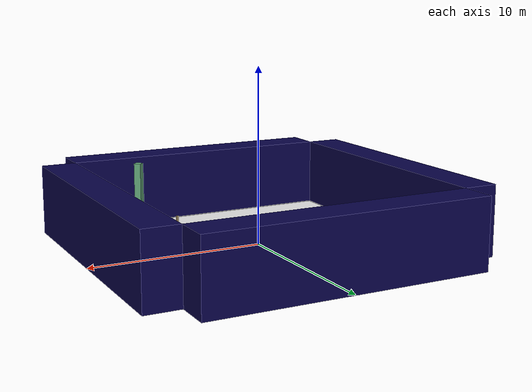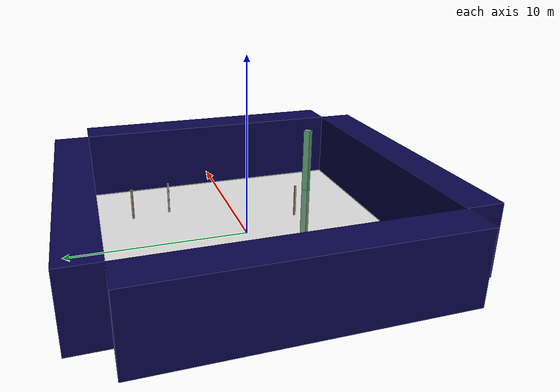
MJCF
<mujoco model="unnamed_model">
  <default>
    <default class="/" />
    <default class="border/" />
    <default class="border_1/" />
    <default class="border_2/" />
    <default class="border_3/" />
    <default class="light/" />
    <default class="agent/" />
    <default class="stone0/" />
    <default class="stone1/" />
    <default class="apple/" />
    <default class="apple_1/" />
  </default>
  <worldbody>
    <body name="border/">
      <body name="border/border" pos="0 9 2">
        <geom name="border/border_geom" class="border/" type="box" size="8.0 1.0 2.0" rgba="0.035 0.016 0.29 1.0" />
      </body>
    </body>
    <body name="border_1/">
      <body name="border_1/border" pos="0 -9 2">
        <geom name="border_1/border_geom" class="border_1/" type="box" size="8.0 1.0 2.0" rgba="0.035 0.016 0.29 1.0" />
      </body>
    </body>
    <body name="border_2/">
      <body name="border_2/border" pos="9 0 2">
        <geom name="border_2/border_geom" class="border_2/" type="box" size="1.0 8.0 2.0" rgba="0.035 0.016 0.29 1.0" />
      </body>
    </body>
    <body name="border_3/">
      <body name="border_3/border" pos="-9 0 2">
        <geom name="border_3/border_geom" class="border_3/" type="box" size="1.0 8.0 2.0" rgba="0.035 0.016 0.29 1.0" />
      </body>
    </body>
    <body name="light/">
      <body name="light/light" pos="0 0 15">
        <geom name="light/light_geom" class="light/" size="0.5" rgba="1.0 1.0 1.0 0.0" />
        <light name="light//unnamed_light_0" class="light/" />
      </body>
    </body>
    <body euler="0 0 270.46598447494591" name="agent/" pos="-6.4000000000000004 0 0.5">
      <joint name="agent/boxagent_freeJoint/" class="/" type="free" />
      <body name="agent/agent" pos="0 0 0" euler="0 0 0">
        <geom name="agent/boxagent_geom" class="agent/" type="box" size="0.5 0.5 0.5" rgba="0.949 0.7451 0.1333 1.0" euler="0 0 0" />
        <camera name="agent/boxagent_camera" class="agent/" fovy="90" pos="0 0 0.25" euler="-90 180 0" />
      </body>
    </body>
    <body name="stone0/">
      <body name="stone0/stone0" pos="5.6407499999999997 5.7970000000000006 0.10000000000000001" euler="0 0 -29.051313238862406">
        <geom name="stone0/stone_geom" class="stone0/" type="box" size="0.05 0.05 1.0" rgba="0.6980392156862745 0.6 0.43137254901960786 1.0" />
      </body>
    </body>
    <body name="stone1/">
      <body name="stone1/stone1" pos="5.9112499999999999 3.4733999999999998 0.10000000000000001" euler="0 0 -13.723218522579884">
        <geom name="stone1/stone_geom" class="stone1/" type="box" size="0.05 0.05 1.0" rgba="0.6470588235294118 0.6392156862745098 0.5686274509803921 1.0" />
      </body>
    </body>
    <body name="apple/">
      <body name="apple/apple" pos="4.9408500000000002 -5.6483999999999996 0.10000000000000001" euler="0 0 42.601850937151681">
        <geom name="apple/apple_geom" class="apple/" type="box" size="0.2 0.2 4.0" rgba="0.396078431372549 0.6705882352941176 0.48627450980392156 1.0" />
      </body>
    </body>
    <body name="apple_1/">
      <body name="apple_1/apple" pos="3.1756000000000002 -4.1616 0.10000000000000001" euler="0 0 97.592961068418106">
        <geom name="apple_1/apple_geom" class="apple_1/" type="box" size="0.05 0.05 1.0" rgba="0.6980392156862745 0.6 0.43137254901960786 1.0" />
      </body>
    </body>
    <geom name="base_plane" class="/" type="plane" size="8 8 0.10000000000000001" />
  </worldbody>
</mujoco>
